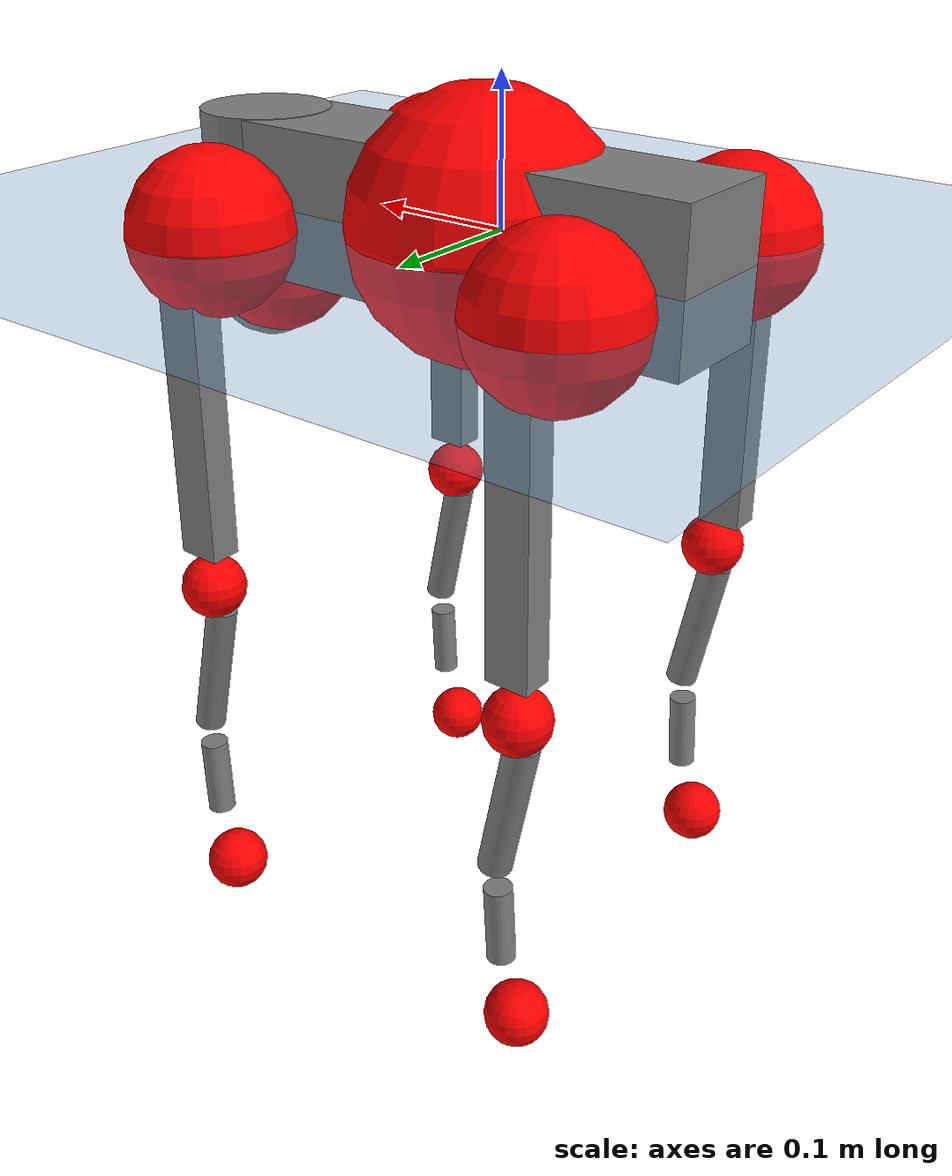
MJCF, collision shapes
<mujoco model="go2">
  <compiler angle="radian" assetdir="assets" balanceinertia="true" inertiafromgeom="false"/>

  <option timestep="0.005" density="1.2" viscosity="2e-05"/>

  <size nkey="1"/>

  <visual>
    <quality shadowsize="8192"/>
    <map shadowclip="0.5"/>
  </visual>

  <default>
    <default class="/">
      <geom contype="0" conaffinity="0" group="1" solref="-1000 -80"/>
      <site size="0.01 0.005 0.005" group="5"/>
      <general forcelimited="true" biastype="affine" gainprm="20" biasprm="0 -20 -0.5"/>
      <default class="go2">
        <joint armature="0.01" damping="0.01" frictionloss="0.2"/>
        <geom condim="1" margin="0.001"/>
        <default class="visual">
          <geom type="mesh" group="2"/>
        </default>
        <default class="collision">
          <geom group="3"/>
          <default class="foot">
            <geom size="0.022 0 0" condim="6" priority="1" friction="0.8 0.02 0.01" solimp="0.015 1 0.022"/>
          </default>
        </default>
        <default class="reward_collision_sphere">
          <geom group="5" rgba="1 0 0 1"/>
        </default>
      </default>
    </default>
  </default>

  <asset>
    <texture type="skybox" colorspace="auto" name="//unnamed_texture_0" builtin="gradient" rgb1="0.95 0.95 0.95" rgb2="0.95 0.95 0.95" width="100" height="600"/>
    <texture type="2d" colorspace="auto" name="texplane" builtin="checker" rgb1="0.345 0.575 0.748" rgb2="0.345 0.575 0.748" markrgb="1 1 1" width="512" height="512"/>
    <material name="MatPlane" class="/" texture="texplane" texuniform="true" texrepeat="2 2" specular="0.9"/>
    <material name="metal" class="/" rgba="0.9 0.95 0.95 1"/>
    <material name="black" class="/" rgba="0 0 0 1"/>
    <material name="white" class="/"/>
    <material name="gray" class="/" rgba="0.671705 0.692426 0.77427 1"/>
    <mesh name="base_0" class="/" file="base_0.obj"/>
    <mesh name="base_1" class="/" file="base_1.obj"/>
    <mesh name="base_2" class="/" file="base_2.obj"/>
    <mesh name="base_3" class="/" file="base_3.obj"/>
    <mesh name="base_4" class="/" file="base_4.obj"/>
    <mesh name="hip_0" class="/" file="hip_0.obj"/>
    <mesh name="hip_1" class="/" file="hip_1.obj"/>
    <mesh name="thigh_0" class="/" file="thigh_0.obj"/>
    <mesh name="thigh_1" class="/" file="thigh_1.obj"/>
    <mesh name="thigh_mirror_0" class="/" file="thigh_mirror_0.obj"/>
    <mesh name="thigh_mirror_1" class="/" file="thigh_mirror_1.obj"/>
    <mesh name="calf_0" class="/" file="calf_0.obj"/>
    <mesh name="calf_1" class="/" file="calf_1.obj"/>
    <mesh name="calf_mirror_0" class="/" file="calf_mirror_0.obj"/>
    <mesh name="calf_mirror_1" class="/" file="calf_mirror_1.obj"/>
    <mesh name="foot" class="/" file="foot.obj"/>
  </asset>

  <worldbody>
    <geom name="floor" class="/" size="100 100 0.125" type="plane" group="0" material="MatPlane"/>
    <light name="toplight_shadow" class="/" pos="0 0 5" dir="0.0990148 0.0990148 -0.990148" type="directional" ambient="0.04 0.04 0.04" diffuse="0.55 0.55 0.55" specular="0.12 0.12 0.12"/>
    <light name="toplight_fill" class="/" pos="0 0 5" dir="0.0990148 0.0990148 -0.990148" type="directional" castshadow="false" ambient="0.04 0.04 0.04" diffuse="0.3 0.3 0.3" specular="0.08 0.08 0.08"/>
    <body name="trunk" childclass="go2" pos="0.00909386 0.00499824 0.00132043" quat="0.999995 0.00297169 0.00103325 0.000839516">
      <inertial pos="0.0240361 -0.0012993 -0.00744512" quat="0.00177517 0.710252 -0.00512193 0.703927" mass="5.24405" diaginertia="0.0147662 0.0653087 0.0456858"/>
      <joint name="//unnamed_joint_0" type="free" armature="0" damping="0" frictionloss="0"/>
      <geom name="//unnamed_geom_1" class="visual" material="black" mesh="base_0"/>
      <geom name="//unnamed_geom_2" class="visual" material="black" mesh="base_1"/>
      <geom name="//unnamed_geom_3" class="visual" material="black" mesh="base_2"/>
      <geom name="//unnamed_geom_4" class="visual" material="white" mesh="base_3"/>
      <geom name="//unnamed_geom_5" class="visual" material="gray" mesh="base_4"/>
      <geom name="trunk_1" class="collision" size="0.172922 0.0429777 0.0524007" type="box"/>
      <geom name="trunk_2" class="collision" size="0.0459655 0.0413689" pos="0.192557 0 0.0116083" type="cylinder"/>
      <geom name="trunk_3" class="collision" size="0.0432076" pos="0.197962 0 -0.0696498"/>
      <geom name="//unnamed_geom_9" class="reward_collision_sphere" size="0.091931"/>
      <geom name="//unnamed_geom_10" class="reward_collision_sphere" size="0.0551586" pos="0.189179 0 -0.0522374"/>
      <site name="imu" pos="-0.00865931 -0.00497505 0.0488422" size="0.0091931"/>
      <camera name="track" pos="0 -1.84292 0" quat="0.707107 0.707107 0 0" mode="trackcom"/>
      <camera name="ego_camera" pos="0.2108 0 0.0522374" quat="-0.5 -0.5 0.5 0.5"/>
      <body name="FL_hip" pos="0.134738 0.047012 -0.00162751" quat="0.99999 0.00137719 -0.00425791 -0.000763055">
        <inertial pos="0.00636031 0.00472506 0.00287563" quat="0.504419 0.500081 0.502007 0.493426" mass="0.468222" diaginertia="0.000110995 0.000396982 0.000881428"/>
        <joint name="FL_hip_joint" pos="0 0 0" axis="0.999998 0.00184858 -0.000553438" stiffness="0.01265" range="-1.08286 1.19342" armature="0.00652278" damping="0.030684" frictionloss="0.168454"/>
        <geom name="//unnamed_geom_11" class="visual" material="metal" mesh="hip_0"/>
        <geom name="//unnamed_geom_12" class="visual" material="gray" mesh="hip_1"/>
        <geom name="//unnamed_geom_13" class="collision" size="0.0422882 0.0183862" pos="0 0.0737167 0" quat="0.707107 0.707107 0 0" type="cylinder"/>
        <geom name="//unnamed_geom_14" class="reward_collision_sphere" size="0.0551586" pos="0 0.0645021 0"/>
        <body name="FL_thigh" pos="-0.00027737 0.0882143 -0.0011322" quat="0.999999 -0.000332536 -0.000352607 -0.00090227">
          <inertial pos="-0.0115558 -0.0188148 -0.0458053" quat="0.831887 0.0778068 -0.0144663 0.549274" mass="0.900672" diaginertia="0.000826726 0.00392599 0.00190014"/>
          <joint name="FL_thigh_joint" pos="0 0 0" axis="0.0123984 0.999873 -0.00999119" range="-1.43862 3.3729" armature="0.00650034" damping="0.0523321" frictionloss="0.160418"/>
          <geom name="//unnamed_geom_15" class="visual" material="metal" mesh="thigh_0"/>
          <geom name="//unnamed_geom_16" class="visual" material="gray" mesh="thigh_1"/>
          <geom name="//unnamed_geom_17" class="collision" size="0.0979065 0.0112615 0.0156283" pos="0 0 -0.123628" quat="0.707107 0 0.707107 0" type="box"/>
          <body name="FL_calf" pos="-0.000580999 -0.000362543 -0.249215" quat="0.999998 0.00196257 -0.000466279 0.000791972">
            <inertial pos="0.000599911 -0.00343618 -0.158563" quat="0.703228 0.0383224 -0.0051334 0.709912" mass="0.187025" diaginertia="0.000210836 0.000937813 0.000118123"/>
            <joint name="FL_calf_joint" pos="0 0 0" axis="0.00225409 0.999962 0.00846618" range="-2.76547 -0.69873" armature="0.0107922" damping="0.00411221" frictionloss="0.170008"/>
            <geom name="//unnamed_geom_18" class="visual" material="gray" mesh="calf_0"/>
            <geom name="//unnamed_geom_19" class="visual" material="black" mesh="calf_1"/>
            <geom name="FL_calf0" class="collision" size="0.0110317 0.0551586" pos="0.00540512 0 -0.0696498" quat="0.994493 0 -0.104807 0" type="cylinder"/>
            <geom name="//unnamed_geom_21" class="collision" size="0.0101124 0.0298776" pos="0.0135128 0 -0.171803" quat="0.999688 0 0.0249974 0" type="cylinder"/>
            <geom name="//unnamed_geom_22" class="visual" pos="0 0 -0.247257" quat="1 0 0 0" material="black" mesh="foot"/>
            <geom name="FL_foot" class="foot" size="0.0211309" pos="-0.00135128 0 -0.247257"/>
            <geom name="//unnamed_geom_24" class="reward_collision_sphere" size="0.0229827"/>
            <geom name="//unnamed_geom_25" class="reward_collision_sphere" size="0.0229827" pos="-0.00135128 0 -0.247257"/>
            <site name="FL_foot" class="foot" pos="-0.00135128 0 -0.247257" size="0.0091931"/>
          </body>
        </body>
      </body>
      <body name="FR_hip" pos="0.132826 -0.0501184 -0.0031564" quat="0.999999 -0.000876145 0.000499284 0.000122289">
        <inertial pos="-0.00989725 -0.00161109 -0.000816155" quat="0.495898 0.513379 0.495011 0.495471" mass="0.42562" diaginertia="0.000114799 0.00036826 0.000998683"/>
        <joint name="FR_hip_joint" pos="0 0 0" axis="1 -0.00027671 0.000390125" stiffness="0.0460506" range="-1.11542 1.05827" armature="0.0135026" damping="0.000282902" frictionloss="0.0984409"/>
        <geom name="//unnamed_geom_26" class="visual" pos="0 -2.08531e-09 -8.94432e-08" quat="4.63268e-05 1 0 0" material="metal" mesh="hip_0"/>
        <geom name="//unnamed_geom_27" class="visual" pos="0 -3.38053e-09 2.21227e-07" quat="4.63268e-05 1 0 0" material="gray" mesh="hip_1"/>
        <geom name="//unnamed_geom_28" class="collision" size="0.0422882 0.0183862" pos="0 -0.0737167 0" quat="0.707107 0.707107 0 0" type="cylinder"/>
        <geom name="//unnamed_geom_29" class="reward_collision_sphere" size="0.0551586" pos="0 -0.0645021 0"/>
        <body name="FR_thigh" pos="0.00152144 -0.0865941 -0.0079668" quat="0.999991 -0.000931902 -0.00234733 -0.00351086">
          <inertial pos="0.00279956 0.0303641 -0.0378703" quat="0.547312 -0.0179606 0.0800045 0.832902" mass="1.0208" diaginertia="0.000858812 0.00401944 0.00202538"/>
          <joint name="FR_thigh_joint" pos="0 0 0" axis="-0.00200262 -0.999987 -0.0047697" range="-3.48546 1.59236" armature="0.00925655" damping="0" frictionloss="0.167949"/>
          <geom name="//unnamed_geom_30" class="visual" material="metal" mesh="thigh_mirror_0"/>
          <geom name="//unnamed_geom_31" class="visual" material="gray" mesh="thigh_mirror_1"/>
          <geom name="//unnamed_geom_32" class="collision" size="0.0979065 0.0112615 0.0156283" pos="0 0 -0.123628" quat="0.707107 0 0.707107 0" type="box"/>
          <body name="FR_calf" pos="-0.00440962 0.00433254 -0.247699" quat="1 -0.000214594 -0.000259225 -0.000373182">
            <inertial pos="0.00136869 0.00125263 -0.164299" quat="0.708577 -0.00347878 -0.000327816 0.705624" mass="0.172063" diaginertia="0.000175001 0.000949637 0.000105017"/>
            <joint name="FR_calf_joint" pos="0 0 0" axis="0.0331401 -0.999444 -0.00377751" stiffness="0.0161883" range="0.83871 2.69307" armature="0.0100788" damping="0" frictionloss="0.18659"/>
            <geom name="//unnamed_geom_33" class="visual" material="gray" mesh="calf_mirror_0"/>
            <geom name="//unnamed_geom_34" class="visual" material="black" mesh="calf_mirror_1"/>
            <geom name="FR_calf0" class="collision" size="0.011951 0.0551586" pos="0.00675639 0 -0.0696498" quat="0.995004 0 -0.0998334 0" type="cylinder"/>
            <geom name="//unnamed_geom_36" class="collision" size="0.0101124 0.0298776" pos="0.0135128 0 -0.171803" quat="0.999688 0 0.0249974 0" type="cylinder"/>
            <geom name="//unnamed_geom_37" class="visual" pos="0 0 -0.247257" quat="1 0 0 0" material="black" mesh="foot"/>
            <geom name="FR_foot" class="foot" size="0.0181604" pos="-0.00135128 0 -0.247257"/>
            <geom name="//unnamed_geom_39" class="reward_collision_sphere" size="0.0229827"/>
            <geom name="//unnamed_geom_40" class="reward_collision_sphere" size="0.0229827" pos="-0.00135128 0 -0.247257"/>
            <site name="FR_foot" class="foot" pos="-0.00135128 0 -0.247257" size="0.0091931"/>
          </body>
        </body>
      </body>
      <body name="RL_hip" pos="-0.132133 0.0441696 -0.00336895" quat="0.999985 -0.00304826 0.00280416 -0.0035545">
        <inertial pos="-0.00538591 0.00135702 0.00166709" quat="0.505587 0.498138 0.497038 0.499193" mass="0.543335" diaginertia="0.00012722 0.000377708 0.00103259"/>
        <joint name="RL_hip_joint" pos="0 0 0" axis="-0.999999 -0.000457152 -0.00111271" range="-1.0708 1.07466" armature="0.00894289" damping="0" frictionloss="0.172502"/>
        <geom name="//unnamed_geom_41" class="visual" pos="4.22679e-09 0 8.28548e-07" quat="4.63268e-05 0 1 0" material="metal" mesh="hip_0"/>
        <geom name="//unnamed_geom_42" class="visual" pos="6.85213e-09 0 7.34804e-07" quat="4.63268e-05 0 1 0" material="gray" mesh="hip_1"/>
        <geom name="//unnamed_geom_43" class="collision" size="0.0422882 0.0183862" pos="0 0.0737167 0" quat="0.707107 0.707107 0 0" type="cylinder"/>
        <geom name="//unnamed_geom_44" class="reward_collision_sphere" size="0.0551586" pos="0 0.0645021 0"/>
        <body name="RL_thigh" pos="0.00848074 0.0862429 -0.00529152" quat="0.999991 -0.00198083 -0.00162625 0.0034947">
          <inertial pos="-0.00430866 -0.0215078 -0.0391614" quat="0.847727 0.0890843 -0.00479971 0.522876" mass="0.970748" diaginertia="0.000835368 0.00417018 0.00183433"/>
          <joint name="RL_thigh_joint" pos="0 0 0" axis="0.0124288 0.999923 0.000583661" stiffness="0.014411" range="-0.549096 4.47241" armature="0.0110689" damping="0.0526476" frictionloss="0.191665"/>
          <geom name="//unnamed_geom_45" class="visual" material="metal" mesh="thigh_0"/>
          <geom name="//unnamed_geom_46" class="visual" material="gray" mesh="thigh_1"/>
          <geom name="//unnamed_geom_47" class="collision" size="0.0979065 0.0112615 0.0156283" pos="0 0 -0.123628" quat="0.707107 0 0.707107 0" type="box"/>
          <body name="RL_calf" pos="-0.00224174 0.00120873 -0.249523" quat="1 0.000322903 4.88157e-05 0.000174671">
            <inertial pos="0.00444854 9.03536e-05 -0.167596" quat="0.7111 0.00157727 -0.00380155 0.703079" mass="0.186122" diaginertia="0.000210684 0.00100585 0.000110608"/>
            <joint name="RL_calf_joint" pos="0 0 0" axis="-0.010849 0.999863 0.0124728" range="-2.72824 -0.832363" armature="0.0103906" damping="0.0463341" frictionloss="0.168338"/>
            <geom name="//unnamed_geom_48" class="visual" material="gray" mesh="calf_0"/>
            <geom name="//unnamed_geom_49" class="visual" material="black" mesh="calf_1"/>
            <geom name="RL_calf0" class="collision" size="0.011951 0.0551586" pos="0.00675639 0 -0.0696498" quat="0.995004 0 -0.0998334 0" type="cylinder"/>
            <geom name="//unnamed_geom_51" class="collision" size="0.0101124 0.0298776" pos="0.0135128 0 -0.171803" quat="0.999688 0 0.0249974 0" type="cylinder"/>
            <geom name="//unnamed_geom_52" class="visual" pos="0 0 -0.247257" quat="1 0 0 0" material="black" mesh="foot"/>
            <geom name="RL_foot" class="foot" size="0.016669" pos="-0.00135128 0 -0.247257"/>
            <geom name="//unnamed_geom_54" class="reward_collision_sphere" size="0.0229827"/>
            <geom name="//unnamed_geom_55" class="reward_collision_sphere" size="0.0229827" pos="-0.00135128 0 -0.247257"/>
            <site name="RL_foot" class="foot" pos="-0.00135128 0 -0.247257" size="0.0091931"/>
          </body>
        </body>
      </body>
      <body name="RR_hip" pos="-0.12922 -0.0339812 -0.00606929" quat="0.999997 -0.00125076 0.00184699 -0.00114806">
        <inertial pos="0.00389918 -0.00810824 -0.000758349" quat="0.47391 0.527939 0.497054 0.499627" mass="0.512976" diaginertia="0.000116682 0.000368166 0.00100971"/>
        <joint name="RR_hip_joint" pos="0 0 0" axis="-0.999975 0.00684654 -0.00192969" range="-1.02023 1.03285" armature="0.00467853" damping="0" frictionloss="0.251873"/>
        <geom name="//unnamed_geom_56" class="visual" pos="-4.21828e-09 -2.08531e-09 9.17991e-07" quat="2.14617e-09 4.63268e-05 4.63268e-05 -1" material="metal" mesh="hip_0"/>
        <geom name="//unnamed_geom_57" class="visual" pos="-6.87318e-09 -3.38053e-09 5.13576e-07" quat="2.14617e-09 4.63268e-05 4.63268e-05 -1" material="gray" mesh="hip_1"/>
        <geom name="//unnamed_geom_58" class="collision" size="0.0422882 0.0183862" pos="0 -0.0737167 0" quat="0.707107 0.707107 0 0" type="cylinder"/>
        <geom name="//unnamed_geom_59" class="reward_collision_sphere" size="0.0551586" pos="0 -0.0645021 0"/>
        <body name="RR_thigh" pos="0.00359945 -0.0885971 0.00688341" quat="0.999999 -0.00025849 0.00113254 0.000117755">
          <inertial pos="-0.00261603 0.0230101 -0.0361782" quat="0.549161 -0.0189536 0.0852038 0.831146" mass="0.93444" diaginertia="0.000866355 0.00389341 0.00206731"/>
          <joint name="RR_thigh_joint" pos="0 0 0" axis="-0.0248974 -0.998855 0.0408481" stiffness="0.0230062" range="-4.37549 0.446496" armature="0.00782769" damping="0.00667186" frictionloss="0.18239"/>
          <geom name="//unnamed_geom_60" class="visual" material="metal" mesh="thigh_mirror_0"/>
          <geom name="//unnamed_geom_61" class="visual" material="gray" mesh="thigh_mirror_1"/>
          <geom name="//unnamed_geom_62" class="collision" size="0.0979065 0.0112615 0.0156283" pos="0 0 -0.123628" quat="0.707107 0 0.707107 0" type="box"/>
          <body name="RR_calf" pos="0.0111597 -0.00532317 -0.247873" quat="1 5.14349e-05 -0.000543867 0.000198911">
            <inertial pos="-0.00615534 0.00024078 -0.167352" quat="0.705149 -0.00141657 -0.00379924 0.709048" mass="0.183516" diaginertia="0.000225283 0.0011597 0.000118091"/>
            <joint name="RR_calf_joint" pos="0 0 0" axis="-0.00287292 -0.999995 -0.000876351" range="0.73149 2.50894" armature="0.0122713" damping="0.015896" frictionloss="0.183828"/>
            <geom name="//unnamed_geom_63" class="visual" material="gray" mesh="calf_mirror_0"/>
            <geom name="//unnamed_geom_64" class="visual" material="black" mesh="calf_mirror_1"/>
            <geom name="RR_calf0" class="collision" size="0.011951 0.0551586" pos="0.00675639 0 -0.0696498" quat="0.995004 0 -0.0998334 0" type="cylinder"/>
            <geom name="//unnamed_geom_66" class="collision" size="0.0101124 0.0298776" pos="0.0135128 0 -0.171803" quat="0.999688 0 0.0249974 0" type="cylinder"/>
            <geom name="//unnamed_geom_67" class="visual" pos="0 0 -0.247257" quat="1 0 0 0" material="black" mesh="foot"/>
            <geom name="RR_foot" class="foot" size="0.0182645" pos="-0.00135128 0 -0.247257"/>
            <geom name="//unnamed_geom_69" class="reward_collision_sphere" size="0.0229827"/>
            <geom name="//unnamed_geom_70" class="reward_collision_sphere" size="0.0229827" pos="-0.00135128 0 -0.247257"/>
            <site name="RR_foot" class="foot" pos="-0.00135128 0 -0.247257" size="0.0091931"/>
          </body>
        </body>
      </body>
    </body>
  </worldbody>

  <contact>
    <pair class="/" geom1="floor" geom2="FL_foot" name="//unnamed_contact_0"/>
    <pair class="/" geom1="floor" geom2="FR_foot" name="//unnamed_contact_1"/>
    <pair class="/" geom1="floor" geom2="RL_foot" name="//unnamed_contact_2"/>
    <pair class="/" geom1="floor" geom2="RR_foot" name="//unnamed_contact_3"/>
  </contact>

  <actuator>
    <general name="FL_hip" class="/" joint="FL_hip_joint" forcerange="-20.085 20.085" gainprm="18.6545" biasprm="0 -18.6545 -0.453773"/>
    <general name="FL_thigh" class="/" joint="FL_thigh_joint" forcerange="-24.1273 24.1273" gainprm="18.6545" biasprm="0 -18.6545 -0.453773"/>
    <general name="FL_calf" class="/" joint="FL_calf_joint" forcerange="-40.866 40.866" gainprm="18.6545" biasprm="0 -18.6545 -0.453773"/>
    <general name="FR_hip" class="/" joint="FR_hip_joint" forcerange="-13.5191 13.5191" gainprm="18.6545" biasprm="0 -18.6545 -0.453773"/>
    <general name="FR_thigh" class="/" joint="FR_thigh_joint" forcerange="-22.1466 22.1466" gainprm="18.6545" biasprm="0 -18.6545 -0.453773"/>
    <general name="FR_calf" class="/" joint="FR_calf_joint" forcerange="-50.5412 50.5412" gainprm="18.6545" biasprm="0 -18.6545 -0.453773"/>
    <general name="RL_hip" class="/" joint="RL_hip_joint" forcerange="-20.4633 20.4633" gainprm="18.6545" biasprm="0 -18.6545 -0.453773"/>
    <general name="RL_thigh" class="/" joint="RL_thigh_joint" forcerange="-20.6092 20.6092" gainprm="18.6545" biasprm="0 -18.6545 -0.453773"/>
    <general name="RL_calf" class="/" joint="RL_calf_joint" forcerange="-46.0374 46.0374" gainprm="18.6545" biasprm="0 -18.6545 -0.453773"/>
    <general name="RR_hip" class="/" joint="RR_hip_joint" forcerange="-23.2125 23.2125" gainprm="18.6545" biasprm="0 -18.6545 -0.453773"/>
    <general name="RR_thigh" class="/" joint="RR_thigh_joint" forcerange="-22.1588 22.1588" gainprm="18.6545" biasprm="0 -18.6545 -0.453773"/>
    <general name="RR_calf" class="/" joint="RR_calf_joint" forcerange="-28.9957 28.9957" gainprm="18.6545" biasprm="0 -18.6545 -0.453773"/>
  </actuator>

  <sensor>
    <gyro site="imu" name="imu_angular_velocity"/>
    <velocimeter site="imu" name="imu_linear_velocity"/>
    <framelinvel objtype="site" objname="FL_foot" name="FL_foot_global_linear_velocity"/>
    <framelinvel objtype="site" objname="FR_foot" name="FR_foot_global_linear_velocity"/>
    <framelinvel objtype="site" objname="RL_foot" name="RL_foot_global_linear_velocity"/>
    <framelinvel objtype="site" objname="RR_foot" name="RR_foot_global_linear_velocity"/>
  </sensor>

  <keyframe>
    <key name="home" qpos="0 0 0.325 1 0 0 0 0.1 0.8 -1.5 -0.1 -0.8 1.5 -0.1 0.8 -1.5 0.1 -0.8 1.5"/>
  </keyframe>
</mujoco>
